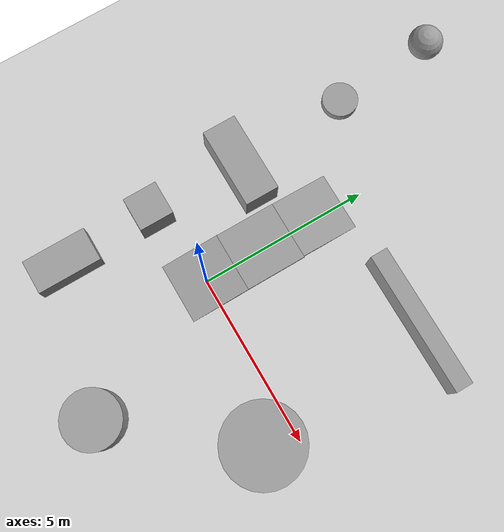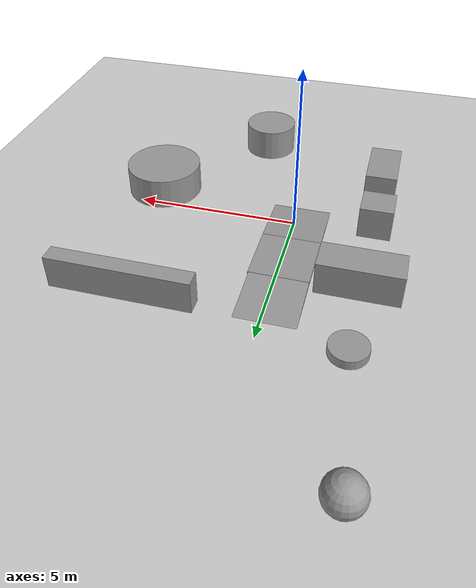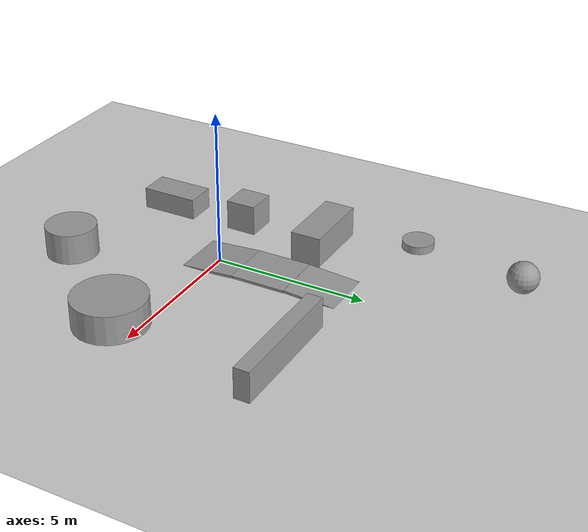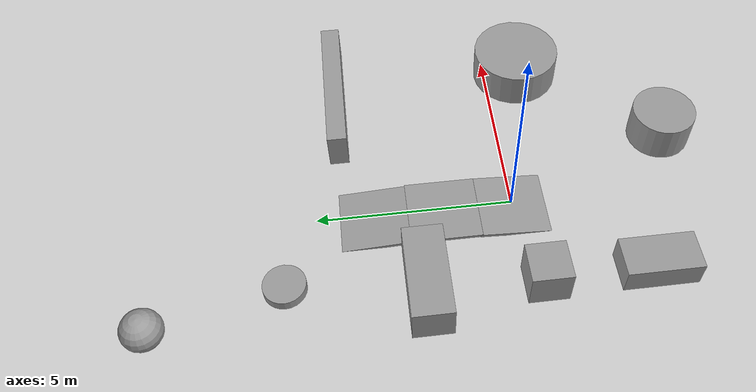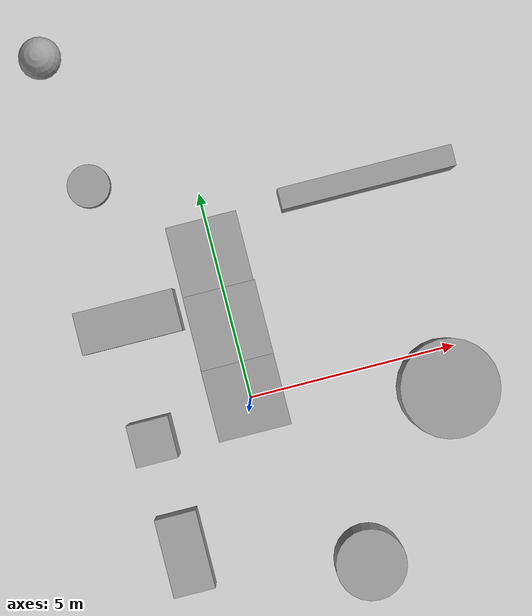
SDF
<sdf version="1.7">
 <world name="default">
  <light name="sun" type="directional">
   <pose>0 0 10 0 -0 0</pose>
   <diffuse>0.8 0.8 0.8 1</diffuse>
   <specular>0.2 0.2 0.2 1</specular>
   <attenuation>
    <range>1000</range>
    <constant>0.9</constant>
    <linear>0.01</linear>
    <quadratic>0.001</quadratic>
   </attenuation>
   <direction>-0.5 0.1 -0.9</direction>
   <spot><inner_angle>0</inner_angle><outer_angle>0</outer_angle><falloff>0</falloff></spot>
  </light>
  <model name="ground_plane">
   <static>1</static>
   <link name="link">
    <collision name="collision">
     <geometry><plane><normal>0 0 1</normal><size>100 100</size></plane></geometry>
     <surface>
      <contact><collide_bitmask>65535</collide_bitmask></contact>
      <friction><ode><mu>100</mu><mu2>50</mu2></ode></friction>
     </surface>
    </collision>
    <visual name="visual">
     <cast_shadows>0</cast_shadows>
     <geometry><plane><normal>0 0 1</normal><size>100 100</size></plane></geometry>
     <material>
      <script><uri>file://media/materials/scripts/gazebo.material</uri><name>Gazebo/Grey</name></script>
     </material>
    </visual>
   </link>
  </model>
  <gravity>0 0 -9.8</gravity>
  <magnetic_field>6e-06 2.3e-05 -4.2e-05</magnetic_field>
  <atmosphere type="adiabatic"/>
  <physics type="ode">
   <max_step_size>0.001</max_step_size>
   <real_time_factor>1</real_time_factor>
   <real_time_update_rate>1000</real_time_update_rate>
  </physics>
  <scene><ambient>0.4 0.4 0.4 1</ambient><background>0.7 0.7 0.7 1</background><shadows>1</shadows></scene>
  <audio><device>default</device></audio>
  <spherical_coordinates>
   <surface_model>EARTH_WGS84</surface_model>
   <latitude_deg>0</latitude_deg>
   <longitude_deg>0</longitude_deg>
   <elevation>0</elevation>
   <heading_deg>0</heading_deg>
  </spherical_coordinates>
  <model name="unit_box_1">
   <pose>-2.31175 2.43831 0.5 0 0 -2e-06</pose>
   <link name="link">
    <inertial>
     <mass>1</mass>
     <inertia>
      <ixx>0.166667</ixx>
      <ixy>0</ixy>
      <ixz>0</ixz>
      <iyy>0.166667</iyy>
      <iyz>0</iyz>
      <izz>0.166667</izz>
     </inertia>
    </inertial>
    <collision name="collision"><geometry><box><size>2.38097 1 1</size></box></geometry></collision>
    <visual name="visual">
     <geometry><box><size>2.38097 1 1</size></box></geometry>
     <material>
      <script><name>Gazebo/Grey</name><uri>file://media/materials/scripts/gazebo.material</uri></script>
     </material>
    </visual>
   </link>
   <static>1</static>
  </model>
  <model name="unit_cylinder">
   <pose>-2.38869 5.68607 0.998518 0 0 -5e-06</pose>
   <link name="link">
    <inertial>
     <mass>1</mass>
     <inertia><ixx>0.145833</ixx><ixy>0</ixy><ixz>0</ixz><iyy>0.145833</iyy><iyz>0</iyz><izz>0.125</izz></inertia>
    </inertial>
    <collision name="collision">
     <geometry><cylinder><radius>0.5</radius><length>0.250742</length></cylinder></geometry>
    </collision>
    <visual name="visual">
     <geometry><cylinder><radius>0.5</radius><length>0.250742</length></cylinder></geometry>
     <material>
      <script><name>Gazebo/Grey</name><uri>file://media/materials/scripts/gazebo.material</uri></script>
     </material>
    </visual>
   </link>
   <static>1</static>
  </model>
  <model name="unit_sphere">
   <pose>-2.81866 8.95253 0.5 0 -0 0</pose>
   <link name="link">
    <inertial>
     <mass>1</mass>
     <inertia><ixx>0.1</ixx><ixy>0</ixy><ixz>0</ixz><iyy>0.1</iyy><iyz>0</iyz><izz>0.1</izz></inertia>
    </inertial>
    <collision name="collision"><geometry><sphere><radius>0.5</radius></sphere></geometry></collision>
    <visual name="visual">
     <geometry><sphere><radius>0.5</radius></sphere></geometry>
     <material>
      <script><name>Gazebo/Grey</name><uri>file://media/materials/scripts/gazebo.material</uri></script>
     </material>
    </visual>
   </link>
   <static>1</static>
  </model>
  <model name="unit_box_2">
   <pose>3.87401 4.3171 0.5 0 -0 0</pose>
   <link name="link">
    <inertial>
     <mass>1</mass>
     <inertia>
      <ixx>0.166667</ixx>
      <ixy>0</ixy>
      <ixz>0</ixz>
      <iyy>0.166667</iyy>
      <iyz>0</iyz>
      <izz>0.166667</izz>
     </inertia>
    </inertial>
    <collision name="collision"><geometry><box><size>4.14526 0.50423 1</size></box></geometry></collision>
    <visual name="visual">
     <geometry><box><size>4.14526 0.50423 1</size></box></geometry>
     <material>
      <script><name>Gazebo/Grey</name><uri>file://media/materials/scripts/gazebo.material</uri></script>
     </material>
    </visual>
   </link>
   <static>1</static>
  </model>
  <model name="unit_box">
   <pose>-2.44495 -0.382233 0.499995 1e-05 -0 -5e-06</pose>
   <link name="link">
    <inertial>
     <mass>1</mass>
     <inertia>
      <ixx>0.166667</ixx>
      <ixy>0</ixy>
      <ixz>0</ixz>
      <iyy>0.166667</iyy>
      <iyz>0</iyz>
      <izz>0.166667</izz>
     </inertia>
    </inertial>
    <collision name="collision"><geometry><box><size>1 1 1</size></box></geometry></collision>
    <visual name="visual">
     <geometry><box><size>1 1 1</size></box></geometry>
     <material>
      <script><name>Gazebo/Grey</name><uri>file://media/materials/scripts/gazebo.material</uri></script>
     </material>
    </visual>
   </link>
  </model>
  <model name="unit_box_4">
   <pose>-2.38141 -3.13015 0.35432 -1.9e-05 -0 -6.7e-05</pose>
   <link name="link">
    <inertial>
     <mass>1</mass>
     <inertia>
      <ixx>0.166667</ixx>
      <ixy>0</ixy>
      <ixz>0</ixz>
      <iyy>0.166667</iyy>
      <iyz>0</iyz>
      <izz>0.166667</izz>
     </inertia>
    </inertial>
    <collision name="collision"><geometry><box><size>1 1.87531 0.708676</size></box></geometry></collision>
    <visual name="visual">
     <geometry><box><size>1 1.87531 0.708676</size></box></geometry>
     <material>
      <script><name>Gazebo/Grey</name><uri>file://media/materials/scripts/gazebo.material</uri></script>
     </material>
    </visual>
   </link>
  </model>
  <model name="unit_cylinder_1_clone">
   <pose>1.7688 -4.38871 0.499997 4e-06 -3e-06 0</pose>
   <link name="link">
    <inertial>
     <mass>1</mass>
     <inertia><ixx>0.145833</ixx><ixy>0</ixy><ixz>0</ixz><iyy>0.145833</iyy><iyz>0</iyz><izz>0.125</izz></inertia>
    </inertial>
    <collision name="collision">
     <geometry><cylinder><radius>0.831077</radius><length>1</length></cylinder></geometry>
    </collision>
    <visual name="visual">
     <geometry><cylinder><radius>0.831077</radius><length>1</length></cylinder></geometry>
     <material>
      <script><name>Gazebo/Grey</name><uri>file://media/materials/scripts/gazebo.material</uri></script>
     </material>
    </visual>
   </link>
  </model>
  <model name="unit_box_0_clone">
   <link name="link">
    <inertial>
     <mass>1</mass>
     <inertia>
      <ixx>0.166667</ixx>
      <ixy>0</ixy>
      <ixz>0</ixz>
      <iyy>0.166667</iyy>
      <iyz>0</iyz>
      <izz>0.166667</izz>
     </inertia>
    </inertial>
    <visual name="visual">
     <geometry><box><size>1.77828 1.80934 0.080132</size></box></geometry>
     <material>
      <script><name>Gazebo/Grey</name><uri>file://media/materials/scripts/gazebo.material</uri></script>
      <shader type="pixel"/>
     </material>
    </visual>
    <collision name="collision">
     <geometry><box><size>1.77828 1.80934 0.080132</size></box></geometry>
     <surface>
      <friction>
       <ode><mu>1</mu><mu2>1</mu2><fdir1>0 0 0</fdir1><slip1>0</slip1><slip2>0</slip2></ode>
       <torsional>
        <coefficient>1</coefficient>
        <patch_radius>0</patch_radius>
        <surface_radius>0</surface_radius>
        <use_patch_radius>1</use_patch_radius>
        <ode><slip>0</slip></ode>
       </torsional>
      </friction>
      <bounce><restitution_coefficient>0</restitution_coefficient><threshold>1e+06</threshold></bounce>
      <contact>
       <collide_without_contact>0</collide_without_contact>
       <collide_without_contact_bitmask>1</collide_without_contact_bitmask>
       <collide_bitmask>1</collide_bitmask>
       <ode>
        <soft_cfm>0</soft_cfm>
        <soft_erp>0.2</soft_erp>
        <kp>1e+13</kp>
        <kd>1</kd>
        <max_vel>0.01</max_vel>
        <min_depth>0</min_depth>
       </ode>
       <bullet>
        <split_impulse>1</split_impulse>
        <split_impulse_penetration_threshold>-0.01</split_impulse_penetration_threshold>
        <soft_cfm>0</soft_cfm>
        <soft_erp>0.2</soft_erp>
        <kp>1e+13</kp>
        <kd>1</kd>
       </bullet>
      </contact>
     </surface>
    </collision>
   </link>
   <static>1</static>
   <pose>-0.106952 0.043985 0.006113 0.065815 -0 0</pose>
  </model>
  <model name="unit_box_0">
   <link name="link">
    <inertial>
     <mass>1</mass>
     <inertia>
      <ixx>0.166667</ixx>
      <ixy>0</ixy>
      <ixz>0</ixz>
      <iyy>0.166667</iyy>
      <iyz>0</iyz>
      <izz>0.166667</izz>
     </inertia>
    </inertial>
    <visual name="visual">
     <geometry><box><size>1.7684 1.80934 0.080132</size></box></geometry>
     <material>
      <script><name>Gazebo/Grey</name><uri>file://media/materials/scripts/gazebo.material</uri></script>
      <shader type="pixel"/>
     </material>
    </visual>
    <collision name="collision">
     <geometry><box><size>1.7684 1.80934 0.080132</size></box></geometry>
     <surface>
      <friction>
       <ode><mu>1</mu><mu2>1</mu2><fdir1>0 0 0</fdir1><slip1>0</slip1><slip2>0</slip2></ode>
       <torsional>
        <coefficient>1</coefficient>
        <patch_radius>0</patch_radius>
        <surface_radius>0</surface_radius>
        <use_patch_radius>1</use_patch_radius>
        <ode><slip>0</slip></ode>
       </torsional>
      </friction>
      <bounce><restitution_coefficient>0</restitution_coefficient><threshold>1e+06</threshold></bounce>
      <contact>
       <collide_without_contact>0</collide_without_contact>
       <collide_without_contact_bitmask>1</collide_without_contact_bitmask>
       <collide_bitmask>1</collide_bitmask>
       <ode>
        <soft_cfm>0</soft_cfm>
        <soft_erp>0.2</soft_erp>
        <kp>1e+13</kp>
        <kd>1</kd>
        <max_vel>0.01</max_vel>
        <min_depth>0</min_depth>
       </ode>
       <bullet>
        <split_impulse>1</split_impulse>
        <split_impulse_penetration_threshold>-0.01</split_impulse_penetration_threshold>
        <soft_cfm>0</soft_cfm>
        <soft_erp>0.2</soft_erp>
        <kp>1e+13</kp>
        <kd>1</kd>
       </bullet>
      </contact>
     </surface>
    </collision>
   </link>
   <static>1</static>
   <pose>-0.102981 1.78989 0.067575 0 -0 0</pose>
  </model>
  <model name="unit_box_0_clone_clone">
   <link name="link">
    <inertial>
     <mass>1</mass>
     <inertia>
      <ixx>0.166667</ixx>
      <ixy>0</ixy>
      <ixz>0</ixz>
      <iyy>0.166667</iyy>
      <iyz>0</iyz>
      <izz>0.166667</izz>
     </inertia>
    </inertial>
    <visual name="visual">
     <geometry><box><size>1.73617 1.80934 0.080132</size></box></geometry>
     <material>
      <script><name>Gazebo/Grey</name><uri>file://media/materials/scripts/gazebo.material</uri></script>
      <shader type="pixel"/>
     </material>
    </visual>
    <collision name="collision">
     <geometry><box><size>1.73617 1.80934 0.080132</size></box></geometry>
     <surface>
      <friction>
       <ode><mu>1</mu><mu2>1</mu2><fdir1>0 0 0</fdir1><slip1>0</slip1><slip2>0</slip2></ode>
       <torsional>
        <coefficient>1</coefficient>
        <patch_radius>0</patch_radius>
        <surface_radius>0</surface_radius>
        <use_patch_radius>1</use_patch_radius>
        <ode><slip>0</slip></ode>
       </torsional>
      </friction>
      <bounce><restitution_coefficient>0</restitution_coefficient><threshold>1e+06</threshold></bounce>
      <contact>
       <collide_without_contact>0</collide_without_contact>
       <collide_without_contact_bitmask>1</collide_without_contact_bitmask>
       <collide_bitmask>1</collide_bitmask>
       <ode>
        <soft_cfm>0</soft_cfm>
        <soft_erp>0.2</soft_erp>
        <kp>1e+13</kp>
        <kd>1</kd>
        <max_vel>0.01</max_vel>
        <min_depth>0</min_depth>
       </ode>
       <bullet>
        <split_impulse>1</split_impulse>
        <split_impulse_penetration_threshold>-0.01</split_impulse_penetration_threshold>
        <soft_cfm>0</soft_cfm>
        <soft_erp>0.2</soft_erp>
        <kp>1e+13</kp>
        <kd>1</kd>
       </bullet>
      </contact>
     </surface>
    </collision>
   </link>
   <static>1</static>
   <pose>-0.115673 3.54071 0.00369 -0.070643 0 0</pose>
  </model>
  <model name="unit_cylinder_2">
   <link name="link">
    <inertial>
     <mass>1</mass>
     <inertia><ixx>0.145833</ixx><ixy>0</ixy><ixz>0</ixz><iyy>0.145833</iyy><iyz>0</iyz><izz>0.125</izz></inertia>
    </inertial>
    <visual name="visual">
     <geometry><cylinder><radius>1.17131</radius><length>1</length></cylinder></geometry>
     <material>
      <script><name>Gazebo/Grey</name><uri>file://media/materials/scripts/gazebo.material</uri></script>
      <shader type="pixel"/>
     </material>
    </visual>
    <collision name="collision">
     <geometry><cylinder><radius>1.17131</radius><length>1</length></cylinder></geometry>
     <surface>
      <friction>
       <ode><mu>1</mu><mu2>1</mu2><fdir1>0 0 0</fdir1><slip1>0</slip1><slip2>0</slip2></ode>
       <torsional>
        <coefficient>1</coefficient>
        <patch_radius>0</patch_radius>
        <surface_radius>0</surface_radius>
        <use_patch_radius>1</use_patch_radius>
        <ode><slip>0</slip></ode>
       </torsional>
      </friction>
      <bounce><restitution_coefficient>0</restitution_coefficient><threshold>1e+06</threshold></bounce>
      <contact>
       <collide_without_contact>0</collide_without_contact>
       <collide_without_contact_bitmask>1</collide_without_contact_bitmask>
       <collide_bitmask>1</collide_bitmask>
       <ode>
        <soft_cfm>0</soft_cfm>
        <soft_erp>0.2</soft_erp>
        <kp>1e+13</kp>
        <kd>1</kd>
        <max_vel>0.01</max_vel>
        <min_depth>0</min_depth>
       </ode>
       <bullet>
        <split_impulse>1</split_impulse>
        <split_impulse_penetration_threshold>-0.01</split_impulse_penetration_threshold>
        <soft_cfm>0</soft_cfm>
        <soft_erp>0.2</soft_erp>
        <kp>1e+13</kp>
        <kd>1</kd>
       </bullet>
      </contact>
     </surface>
    </collision>
   </link>
   <static>1</static>
   <pose>4.54904 -0.901104 0.433999 0 -0 0</pose>
  </model>
 </world>
</sdf>
